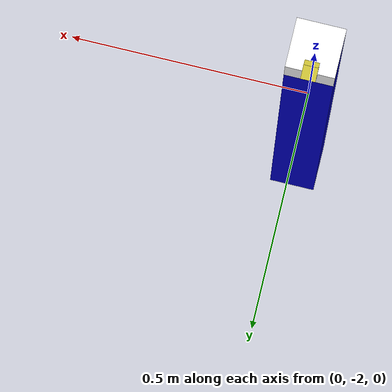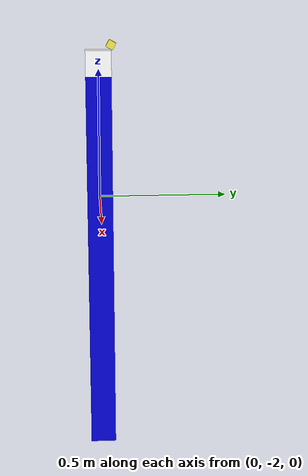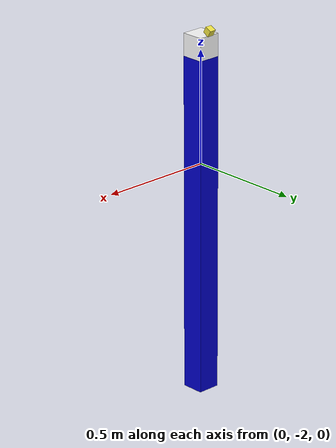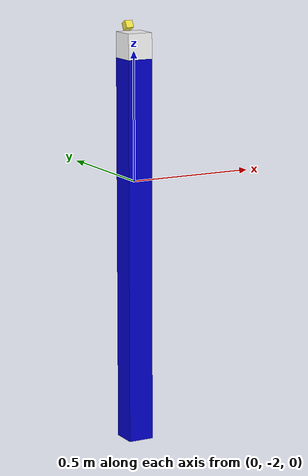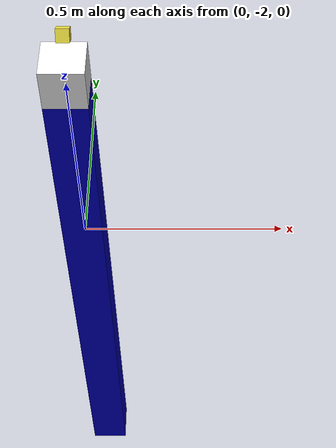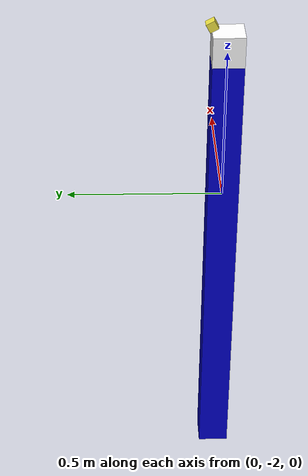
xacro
<?xml version="1.0"?>
<robot xmlns:xacro="http://wiki.ros.org/xacro" name="PoleSensor">

  <xacro:property name="PI" value="3.14159" />
  <xacro:property name="mass1" value="10" />
  <xacro:property name="mass2" value="1" />
  <xacro:property name="width1" value="0.1" />
  <xacro:property name="width2" value="0.1" />
  <xacro:property name="length1" value="1.5" />
  <xacro:property name="length2" value="0.1" />
  <xacro:property name="Custom_length" value="0.275935" />

  <xacro:include filename="$(find panda_description)/urdf/sensor_stick.gazebo.xacro" />

  <link name="world" />

  <link name="link_1">
    <visual>
      <geometry><box size="${width1} ${width1} ${length1}" /></geometry>
      <material name="blue"><color rgba="0.0 0.0 0.8 1.0" /></material>
    </visual>
    <collision>
      <geometry><box size="${width1} ${width1} ${length1}" /></geometry>
    </collision>
    <inertial>
      <mass value="${mass1}" />
      <inertia ixx="1.0" ixy="0.0" ixz="0.0" iyy="1.0" iyz="0.0" izz="1.0"/>
    </inertial>
  </link>

  <link name="link_2">
    <visual>
      <geometry><box size="${width2} ${width2} ${length2}" /></geometry>
      <material name="white"><color rgba="1.0 1.0 1.0 1.0" /></material>
    </visual>
    <collision>
      <geometry><box size="${width2} ${width2} ${length2}" /></geometry>
    </collision>
    <inertial>
      <mass value="${mass2}" />
      <inertia ixx="0.001" ixy="0.0" ixz="0.0" iyy="0.001" iyz="0.0" izz="0.001"/>
    </inertial>
  </link>

   <link name='camera_link'>
    <pose>0 0 0 0 0 0</pose>
    <inertial>
      <mass value="0.1"/>
      <origin xyz="0 0 0" rpy="0 0 0"/>
      <inertia
          ixx="1e-6" ixy="0" ixz="0"
          iyy="1e-6" iyz="0"
          izz="1e-6"
      />
    </inertial>

    <collision name='collision'>
      <origin xyz="0 0 0" rpy="0 0 0"/>
      <geometry>
        <box size=".03 .03 .03"/>
      </geometry>
    </collision>

    <visual name='camera_link_visual'>
      <origin xyz="0 0 0" rpy="0 0 0"/>
      <geometry>
        <box size=".03 .03 .03"/>
      </geometry>
    </visual>

  </link>

  <joint name="fixed_base_joint" type="fixed">
    <parent link="world" />
    <child link="link_1" />
    <origin xyz="0 -2 -${Custom_length}" rpy="0 0 0" />
  </joint>

  <joint name="pan_joint" type="fixed">
    <parent link="link_1" />
    <child link="link_2" />
    <axis xyz="0 0 1" />
    <origin xyz="0 0 ${length1/2+length2/2}" rpy="0 0 ${PI/2}" />
  </joint>

  <joint name="tilt_joint" type="fixed">
    <origin xyz="0.05 0 ${length2/2+0.02}" rpy="0 0.5 0" />
    <parent link="link_2" />
    <child link="camera_link" />
    <axis xyz="0 1 0" />
  </joint>

 <joint type="fixed" name="camera_optical_joint">
    <origin xyz="0 0 0" rpy="-1.5707 0 -1.5707"/>
    <child link="camera_link_optical"/>
    <parent link="camera_link"/>
  </joint>

  <link name="camera_link_optical">
  </link>

</robot>
